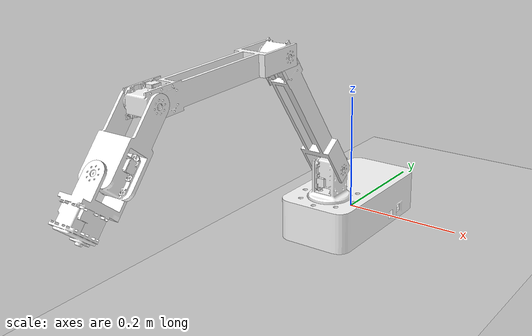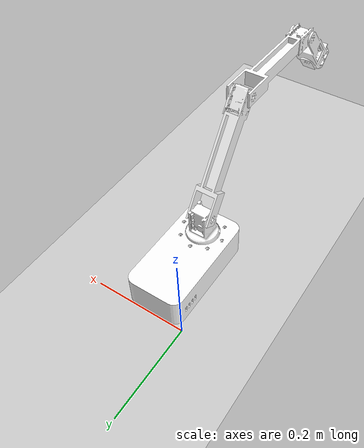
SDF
<?xml version="1.0" ?>
<sdf version="1.6">
  <world name="arm_world">
		<physics name="default_physics" default="0" type="ode">
		 <max_step_size>0.001</max_step_size> //최대 1ms로 계산 가능
		 <real_time_factor>1</real_time_factor> //실시간과 비슷 ex)0.5>0.5배속
		 <real_time_update_rate>1000</real_time_update_rate> //1초안에 1000번 계산, 1000hz
		 <ode> //open dynamic engine을 사용하는 물리환경
			<solver>
			 <type>quick</type>
			 <iters>100</iters>
			 <sor>1.0</sor>
			 <use_dynamic_moi_rescaling>false</use_dynamic_moi_rescaling>
			</solver>
		 </ode>
	</physics>

	<include>
	 <uri>model://ground_plane</uri>
	</include>

	<include>
	 <uri>model://sun</uri>
	</include>

	<include>
	 <uri>model://robot_arm</uri>
	 <pose frame=''>0 0 0 -1.57096 0 -1.57096</pose> //x,y,z,roll,pitch,yaw -1.57096
	 	<plugin name="arm_plugin.cc" filename="libdetail_arm_pkgs.so"/>
	</include>
 </world>
</sdf>

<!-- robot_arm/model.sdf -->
<sdf version='1.7'>
  <model name='robot_arm'>
    <link name='base_link'>
      <inertial>
        <pose>0.10153 0.059553 0.056505 0 -0 0</pose>
        <mass>0.43622</mass>
        <inertia>
          <ixx>0.00082285</ixx>
          <ixy>0</ixy>
          <ixz>0</ixz>
          <iyy>0.00064528</iyy>
          <iyz>0</iyz>
          <izz>0.0013806</izz>
        </inertia>
      </inertial>
      <collision name='base_link_collision'>
        <pose>0 0 0 0 -0 0</pose>
        <geometry>
          <mesh>
            <scale>1 1 1</scale>
            <uri>model://robot_arm/meshes/base_link.STL</uri>
          </mesh>
        </geometry>
      </collision>
      <visual name='base_link_visual'>
        <pose>0 0 0 0 -0 0</pose>
        <geometry>
          <mesh>
            <scale>1 1 1</scale>
            <uri>model://robot_arm/meshes/base_link.STL</uri>
          </mesh>
        </geometry>
        <material>
         <ambient>0 0 0 1</ambient>
         <diffuse>1 1 1 1</diffuse>
         <emissive>0 0 0 1</emissive>
         <specular>0 0 0 0</specular>
        </material>
      </visual>
    </link>
    <joint name='first_yaw' type='revolute'>
      <pose relative_to='base_link'>0.16463 -0.043952 0.059652 1.5708 -0 0</pose>
      <parent>base_link</parent>
      <child>first_Link</child>
      <axis>
        <xyz>0 0 1</xyz>
        <limit>
      		<effort>-1</effort> //토크 제한을 무한으로
      		<velocity>-1</velocity> //속도 제한을 무한으로
 	</limit>
        <dynamics>
          <spring_reference>0</spring_reference>
          <spring_stiffness>0</spring_stiffness>
        </dynamics>
      </axis>
    </joint>
    <link name='first_Link'>
      <pose relative_to='first_yaw'>0 0 0 0 -0 0</pose>
      <inertial>
        <pose>-0.001688 5.3e-05 0.037491 0 0.53 0</pose>
        <mass>0.27473</mass>
        <inertia>
          <ixx>0.00013933</ixx>
          <ixy>0</ixy>
          <ixz>0</ixz>
          <iyy>0.00014014</iyy>
          <iyz>0</iyz>
          <izz>0.00022755</izz>
        </inertia>
      </inertial>
      <collision name='first_Link_collision'>
        <pose>0 0 0 0 -0 0</pose>
        <geometry>
          <mesh>
            <scale>1 1 1</scale>
            <uri>model://robot_arm/meshes/first_Link.STL</uri>
          </mesh>
        </geometry>
      </collision>
      <visual name='first_Link_visual'>
        <pose>0 0 0 0 -0 0</pose>
        <geometry>
          <mesh>
            <scale>1 1 1</scale>
            <uri>model://robot_arm/meshes/first_Link.STL</uri>
          </mesh>
        </geometry>
        <material>
         <ambient>0 0 0 1</ambient>
         <diffuse>1 1 1 1</diffuse>
         <emissive>0 0 0 1</emissive>
         <specular>0 0 0 0</specular>
        </material>
      </visual>
    </link>
    <joint name='second_pitch' type='revolute'>
      <pose relative_to='first_Link'>1.2e-05 0.000725 0.095227 0 0.6 0</pose>
      <parent>first_Link</parent>
      <child>second_Link</child>
      <axis>
        <xyz>0 1 0</xyz>
        <limit>
      		<effort>-1</effort> //토크 제한을 무한으로
      		<velocity>-1</velocity> //속도 제한을 무한으로
 	</limit>
        <dynamics>
          <spring_reference>0</spring_reference>
          <spring_stiffness>0</spring_stiffness>
        </dynamics>
      </axis>
    </joint>
    <link name='second_Link'>
      <pose relative_to='second_pitch'>0 0 0 0 -0 0</pose>
      <inertial>
        <pose>-1.3e-05 2.4e-05 0.14715 0 0.53 0</pose>
        <mass>0.13965</mass>
        <inertia>
          <ixx>0.00022774</ixx>
          <ixy>0</ixy>
          <ixz>0</ixz>
          <iyy>0.00022298</iyy>
          <iyz>0</iyz>
          <izz>2.3425e-05</izz>
        </inertia>
      </inertial>
      <collision name='second_Link_collision'>
        <pose>0 0 0 0 -0 0</pose>
        <geometry>
          <mesh>
            <scale>1 1 1</scale>
            <uri>model://robot_arm/meshes/second_Link.STL</uri>
          </mesh>
        </geometry>
      </collision>
      <visual name='second_Link_visual'>
        <pose>0 0 0 0 -0 0</pose>
        <geometry>
          <mesh>
            <scale>1 1 1</scale>
            <uri>model://robot_arm/meshes/second_Link.STL</uri>
          </mesh>
        </geometry>
        <material>
         <ambient>0 0 0 1</ambient>
         <diffuse>1 1 1 1</diffuse>
         <emissive>0 0 0 1</emissive>
         <specular>0 0 0 0</specular>
        </material>
      </visual>
    </link>
    <joint name='third_pitch' type='revolute'>
      <pose relative_to='second_Link'>0 0.000475 0.244 0 1 0</pose>
      <parent>second_Link</parent>
      <child>third_Link</child>
      <axis>
        <xyz>0 1 0</xyz>
        <limit>
      		<effort>-1</effort> //토크 제한을 무한으로
      		<velocity>-1</velocity> //속도 제한을 무한으로
 	</limit>
        <dynamics>
          <spring_reference>0</spring_reference>
          <spring_stiffness>0</spring_stiffness>
        </dynamics>
      </axis>
    </joint>
    <link name='third_Link'>
      <pose relative_to='third_pitch'>0 0 0 0 -0 0</pose>
      <inertial>
        <pose>-1.3e-05 2.4e-05 0.14715 0 1 0</pose>
        <mass>0.13965</mass>
        <inertia>
          <ixx>0.00022774</ixx>
          <ixy>0</ixy>
          <ixz>0</ixz>
          <iyy>0.00022298</iyy>
          <iyz>0</iyz>
          <izz>2.3425e-05</izz>
        </inertia>
      </inertial>
      <collision name='third_Link_collision'>
        <pose>0 0 0 0 -0 0</pose>
        <geometry>
          <mesh>
            <scale>1 1 1</scale>
            <uri>model://robot_arm/meshes/third_Link.STL</uri>
          </mesh>
        </geometry>
      </collision>
      <visual name='third_Link_visual'>
        <pose>0 0 0 0 -0 0</pose>
        <geometry>
          <mesh>
            <scale>1 1 1</scale>
            <uri>model://robot_arm/meshes/third_Link.STL</uri>
          </mesh>
        </geometry>
        <material>
         <ambient>0 0 0 1</ambient>
         <diffuse>1 1 1 1</diffuse>
         <emissive>0 0 0 1</emissive>
         <specular>0 0 0 0</specular>
        </material>
      </visual>
    </link>
    <joint name='fourth_pitch' type='revolute'>
      <pose relative_to='third_Link'>0 0 0.244 0 0.85 0</pose>
      <parent>third_Link</parent>
      <child>foutrh_Link</child>
      <axis>
        <xyz>0 1 0</xyz>
        <limit>
      		<effort>-1</effort> //토크 제한을 무한으로
      		<velocity>-1</velocity> //속도 제한을 무한으로
 	</limit>
        <dynamics>
          <spring_reference>0</spring_reference>
          <spring_stiffness>0</spring_stiffness>
        </dynamics>
      </axis>
    </joint>
    <link name='foutrh_Link'>
      <pose relative_to='fourth_pitch'>0 0 0 0 -0 0</pose>
      <inertial>
        <pose>-0.000172 0.000474 0.065219 0 0.85 0</pose>
        <mass>0.090943</mass>
        <inertia>
          <ixx>5.4292e-05</ixx>
          <ixy>0</ixy>
          <ixz>0</ixz>
          <iyy>4.9911e-05</iyy>
          <iyz>0</iyz>
          <izz>2.972e-05</izz>
        </inertia>
      </inertial>
      <collision name='foutrh_Link_collision'>
        <pose>0 0 0 0 -0 0</pose>
        <geometry>
          <mesh>
            <scale>1 1 1</scale>
            <uri>model://robot_arm/meshes/foutrh_Link.STL</uri>
          </mesh>
        </geometry>
      </collision>
      <visual name='foutrh_Link_visual'>
        <pose>0 0 0 0 -0 0</pose>
        <geometry>
          <mesh>
            <scale>1 1 1</scale>
            <uri>model://robot_arm/meshes/foutrh_Link.STL</uri>
          </mesh>
        </geometry>
        <material>
         <ambient>0 0 0 1</ambient>
         <diffuse>1 1 1 1</diffuse>
         <emissive>0 0 0 1</emissive>
         <specular>0 0 0 0</specular>
        </material>
      </visual>
    </link>
	<joint name='fifth_pitch' type='revolute'>
      <pose relative_to='foutrh_Link'>-0.000262 0.000487 0.0936 0 0 0</pose>
      <parent>foutrh_Link</parent>
      <child>fifth_Link</child>
      <axis>
        <xyz>1 0 0</xyz>
        <limit>
      		<effort>-1</effort> //토크 제한을 무한으로
      		<velocity>-1</velocity> //속도 제한을 무한으로
 	</limit>
        <dynamics>
          <spring_reference>0</spring_reference>
          <spring_stiffness>0</spring_stiffness>
        </dynamics>
      </axis>
    </joint>
    <link name='fifth_Link'>
      <pose relative_to='fifth_pitch'>0 0 0 0 -0 0</pose>
      <inertial>
        <pose>9e-05 -1.3e-05 -0.028381 0 0 0</pose>
        <mass>0.090943</mass>
        <inertia>
          <ixx>5.4292e-05</ixx>
          <ixy>0</ixy>
          <ixz>0</ixz>
          <iyy>4.9911e-05</iyy>
          <iyz>0</iyz>
          <izz>2.972e-05</izz>
        </inertia>
      </inertial>
      <collision name='fifth_Link_collision'>
        <pose>0 0 0 0 -0 0</pose>
        <geometry>
          <mesh>
            <scale>1 1 1</scale>
            <uri>model://robot_arm/meshes/fifth_Link.STL</uri>
          </mesh>
        </geometry>
      </collision>
      <visual name='fifth_Link_visual'>
        <pose>0 0 0 0 -0 0</pose>
        <geometry>
          <mesh>
            <scale>0 0 0</scale>
            <uri>model://robot_arm/meshes/fifth_Link.STL</uri>
          </mesh>
        </geometry>
        <material>
         <ambient>0 0 0 1</ambient>
         <diffuse>1 1 1 1</diffuse>
         <emissive>0 0 0 1</emissive>
         <specular>0 0 0 0</specular>
        </material>
      </visual>
    </link>

    <joint name='sixth_roll' type='revolute'>
      <pose relative_to='fifth_Link'>-0.000475 -1.2e-05 0.049873 0 0 0</pose>
      <parent>fifth_Link</parent>
      <child>sixth_Link</child>
      <axis>
        <xyz>0 0 1</xyz>
        <limit>
      		<effort>-1</effort> //토크 제한을 무한으로
      		<velocity>-1</velocity> //속도 제한을 무한으로
 	</limit>
        <dynamics>
          <spring_reference>0</spring_reference>
          <spring_stiffness>0</spring_stiffness>
        </dynamics>
      </axis>
    </joint>
    <link name='sixth_Link'>
      <pose relative_to='sixth_roll'>0 0 0 0 -0 0</pose>
      <inertial>
        <pose>-0.008434 -1e-06 -0.008997 0 0 0</pose>
        <mass>0.063937</mass>
        <inertia>
          <ixx>1.2986e-05</ixx>
          <ixy>0</ixy>
          <ixz>0</ixz>
          <iyy>2.4205e-05</iyy>
          <iyz>0</iyz>
          <izz>2.0655e-05</izz>
        </inertia>
      </inertial>
      <collision name='sixth_Link_collision'>
        <pose>0 0 0 0 -0 0</pose>
        <geometry>
          <mesh>
            <scale>1 1 1</scale>
            <uri>model://robot_arm/meshes/sixth_Link.STL</uri>
          </mesh>
        </geometry>
      </collision>
      <visual name='sixth_Link_visual'>
        <pose>0 0 0 0 -0 0</pose>
        <geometry>
          <mesh>
            <scale>1 1 1</scale>
            <uri>model://robot_arm/meshes/sixth_Link.STL</uri>
          </mesh>
        </geometry>
        <material>
         <ambient>0 0 0 1</ambient>
         <diffuse>1 1 1 1</diffuse>
         <emissive>0 0 0 1</emissive>
         <specular>0 0 0 0</specular>
        </material>
      </visual>
    </link>
  </model>
</sdf>
